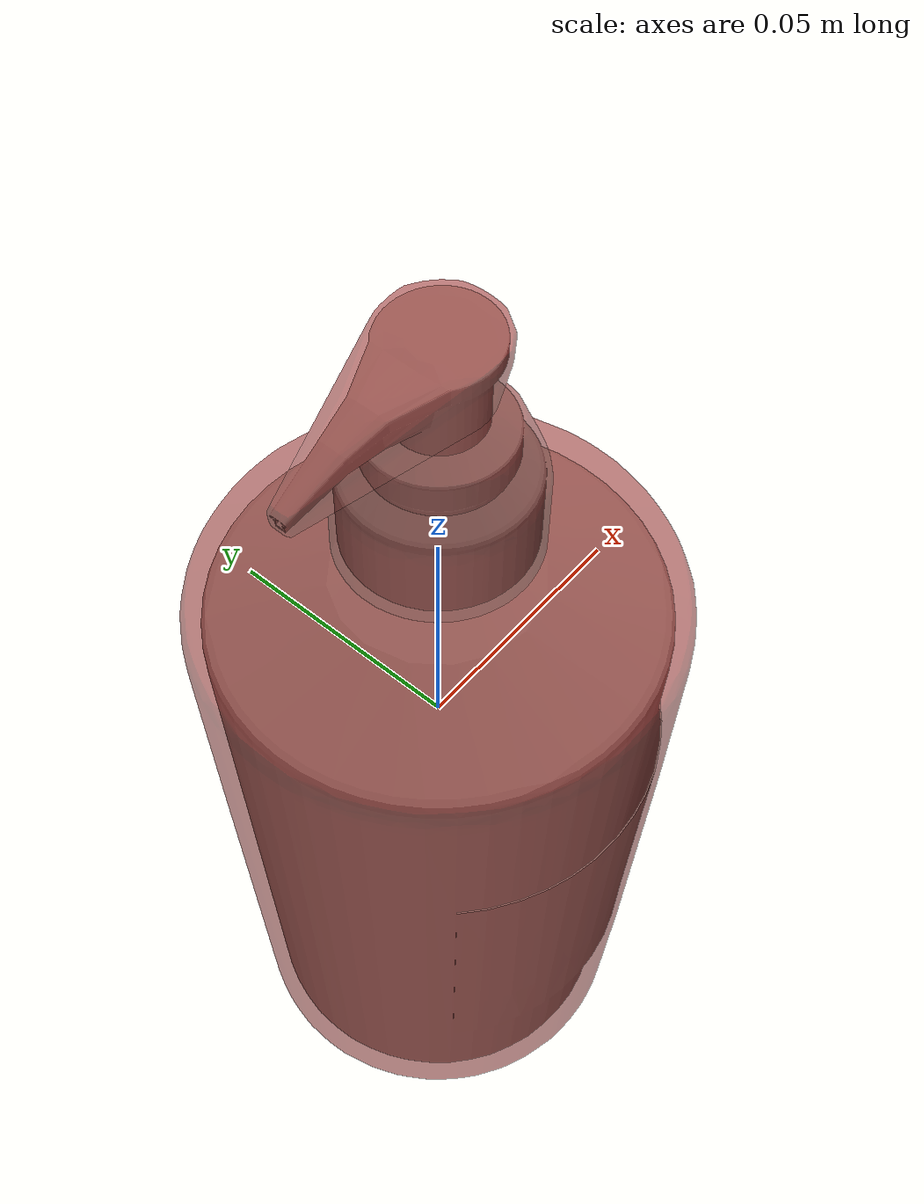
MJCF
<?xml version='1.0' encoding='utf-8'?>
<mujoco model="model">
  <option timestep="0.002" gravity="0.0 0.0 -9.81" />
  <compiler angle="radian" />
  <asset>
    <mesh file="visual/Clear.obj" name="SoapDispenser001_Clear_vis" />
    <mesh file="visual/Prop.obj" name="SoapDispenser001_Prop_vis" />
    <texture file="visual/T_BC001.png" name="SoapDispenser001_Clear_material" type="2d" />
    <material name="SoapDispenser001_Clear_material" rgba="1 1 1 0.20000000298023224" texture="SoapDispenser001_Clear_material" shininess="0.5" specular="0.3103448502657381" />
    <texture file="visual/T_BC001.png" name="SoapDispenser001_Prop_material" type="2d" />
    <material name="SoapDispenser001_Prop_material" rgba="1 1 1 1.0" texture="SoapDispenser001_Prop_material" shininess="0.2" specular="0.3103448502657381" />
    <mesh file="collision/collision_mesh_collision_0.obj" name="SoapDispenser001_collision_mesh_0" />
    <mesh file="collision/collision_mesh_collision_1.obj" name="SoapDispenser001_collision_mesh_1" />
    <mesh file="collision/collision_mesh_collision_2.obj" name="SoapDispenser001_collision_mesh_2" />
  </asset>
  <default>
    <default class="visual">
      <geom conaffinity="0" contype="0" group="1" type="mesh" />
    </default>
    <default class="collision">
      <geom group="0" rgba="0.5 0 0 0.5" density="1000.0" />
    </default>
    <default class="spawn">
      <geom group="0" rgba="1 1 1 0.5" contype="0" conaffinity="0" />
      <site group="0" rgba="1 1 1 0.5" />
    </default>
    <default class="region">
      <geom group="1" conaffinity="0" contype="0" rgba="0 1 0 0" mass="0" />
    </default>
  </default>
  <worldbody>
    <body>
      <body name="object">
        <geom mesh="SoapDispenser001_Clear_vis" type="mesh" solimp="0.998 0.998 0.001" solref="0.001 1" friction="0.95 0.3 0.1" class="visual" material="SoapDispenser001_Clear_material" />
        <body name="SoapDispenser001_Prop">
          <geom mesh="SoapDispenser001_Prop_vis" type="mesh" solimp="0.998 0.998 0.001" solref="0.001 1" friction="0.95 0.3 0.1" class="visual" material="SoapDispenser001_Prop_material" />
        </body>
        <geom class="region" name="reg_bbox" type="box" pos="0.0 0.0 -1.616499999999854e-05" size="0.04491028 0.04491028 0.099868025" />
        <geom mesh="SoapDispenser001_collision_mesh_0" type="mesh" class="collision" />
        <geom mesh="SoapDispenser001_collision_mesh_1" type="mesh" class="collision" />
        <geom mesh="SoapDispenser001_collision_mesh_2" type="mesh" class="collision" />
      </body>
    <site rgba="0 0 0 0" size="0.005" pos="0 0 -0.09988419" name="bottom_site" /><site rgba="0 0 0 0" size="0.005" pos="0 0 0.09985186" name="top_site" /><site rgba="0 0 0 0" size="0.005" pos="0.04491028 0.04491028 0" name="horizontal_radius_site" /></body>
  </worldbody>
  <actuator />
</mujoco>
